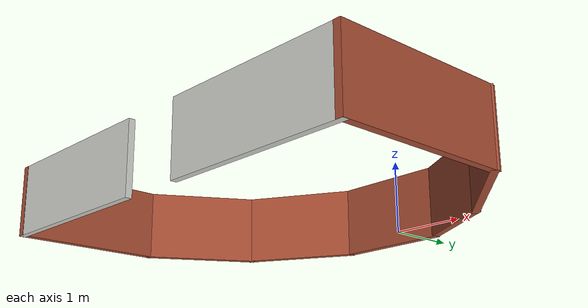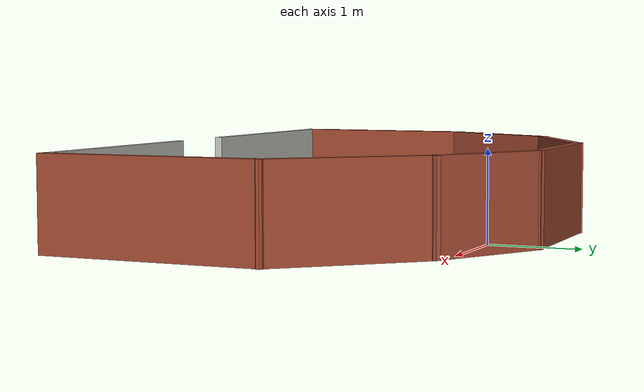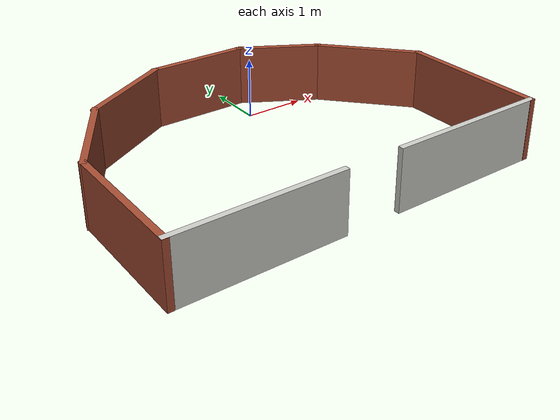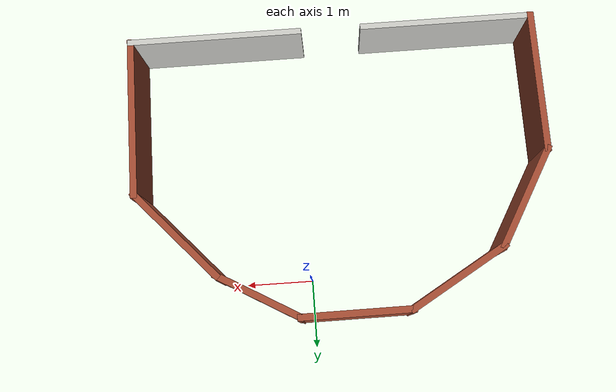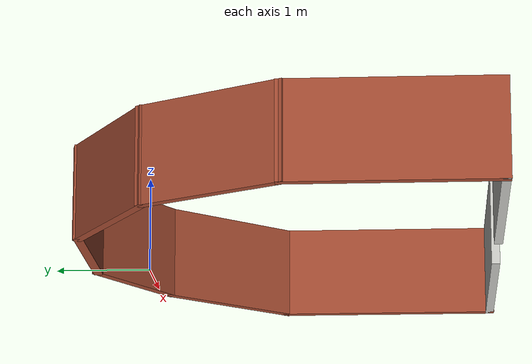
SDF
<?xml version='1.0'?>
<sdf version='1.7'>
  <model name='sketch_try'>
    <pose>-0.558796 -1.55785 0 0 -0 0</pose>
    <link name='Wall_0'>
      <collision name='Wall_0_Collision'>
        <geometry>
          <box>
            <size>2.45 0.1 1</size>
          </box>
        </geometry>
        <pose>0 0 0.5 0 -0 0</pose>
      </collision>
      <visual name='Wall_0_Visual'>
        <pose>0 0 0.5 0 -0 0</pose>
        <geometry>
          <box>
            <size>2.45 0.1 1</size>
          </box>
        </geometry>
        <material>
          <script>
            <uri>file://media/materials/scripts/gazebo.material</uri>
            <name>Gazebo/Bricks</name>
          </script>
          <ambient>1 1 1 1</ambient>
        </material>
        <meta>
          <layer>0</layer>
        </meta>
      </visual>
      <pose>3.0488 -0.977149 0 0 -0 -1.5708</pose>
    </link>
    <link name='Wall_11'>
      <collision name='Wall_11_Collision'>
        <geometry>
          <box>
            <size>2.2 0.1 1</size>
          </box>
        </geometry>
        <pose>0 0 0.5 0 -0 0</pose>
      </collision>
      <visual name='Wall_11_Visual'>
        <pose>0 0 0.5 0 -0 0</pose>
        <geometry>
          <box>
            <size>2.2 0.1 1</size>
          </box>
        </geometry>
        <material>
          <script>
            <uri>file://media/materials/scripts/gazebo.material</uri>
            <name>Gazebo/Bricks</name>
          </script>
          <ambient>1 1 1 1</ambient>
        </material>
        <meta>
          <layer>0</layer>
        </meta>
      </visual>
      <pose>-3.0512 -1.10215 0 0 -0 -1.5708</pose>
    </link>
    <link name='Wall_13'>
      <pose>-0.001204 -2.15215 0 0 -0 0</pose>
      <visual name='Wall_13_Visual_0'>
        <pose>-1.7675 0 0.5 0 -0 0</pose>
        <geometry>
          <box>
            <size>2.655 0.09 1</size>
          </box>
        </geometry>
        <material>
          <script>
            <uri>file://media/materials/scripts/gazebo.material</uri>
            <name>Gazebo/CeilingTiled</name>
          </script>
          <ambient>0.760784 0.662745 0.627451 1</ambient>
        </material>
        <meta>
          <layer>0</layer>
        </meta>
      </visual>
      <collision name='Wall_13_Collision_0'>
        <geometry>
          <box>
            <size>2.655 0.09 1</size>
          </box>
        </geometry>
        <pose>-1.7675 0 0.5 0 -0 0</pose>
      </collision>
      <visual name='Wall_13_Visual_1'>
        <pose>1.7775 0 0.5 0 -0 0</pose>
        <geometry>
          <box>
            <size>2.635 0.09 1</size>
          </box>
        </geometry>
        <material>
          <script>
            <uri>file://media/materials/scripts/gazebo.material</uri>
            <name>Gazebo/CeilingTiled</name>
          </script>
          <ambient>0.760784 0.662745 0.627451 1</ambient>
        </material>
        <meta>
          <layer>0</layer>
        </meta>
      </visual>
      <collision name='Wall_13_Collision_1'>
        <geometry>
          <box>
            <size>2.635 0.09 1</size>
          </box>
        </geometry>
        <pose>1.7775 0 0.5 0 -0 0</pose>
      </collision>
    </link>
    <link name='Wall_5'>
      <collision name='Wall_5_Collision'>
        <geometry>
          <box>
            <size>1.7 0.1 1</size>
          </box>
        </geometry>
        <pose>0 0 0.5 0 -0 0</pose>
      </collision>
      <visual name='Wall_5_Visual'>
        <pose>0 0 0.5 0 -0 0</pose>
        <geometry>
          <box>
            <size>1.7 0.1 1</size>
          </box>
        </geometry>
        <material>
          <script>
            <uri>file://media/materials/scripts/gazebo.material</uri>
            <name>Gazebo/Bricks</name>
          </script>
          <ambient>1 1 1 1</ambient>
        </material>
        <meta>
          <layer>0</layer>
        </meta>
      </visual>
      <pose>-2.6512 0.640851 0 0 -0 1.04731</pose>
    </link>
    <link name='Wall_6'>
      <collision name='Wall_6_Collision'>
        <geometry>
          <box>
            <size>1.69982 0.1 1</size>
          </box>
        </geometry>
        <pose>0 0 0.5 0 -0 0</pose>
      </collision>
      <visual name='Wall_6_Visual'>
        <pose>0 0 0.5 0 -0 0</pose>
        <geometry>
          <box>
            <size>1.69982 0.1 1</size>
          </box>
        </geometry>
        <material>
          <script>
            <uri>file://media/materials/scripts/gazebo.material</uri>
            <name>Gazebo/Bricks</name>
          </script>
          <ambient>1 1 1 1</ambient>
        </material>
        <meta>
          <layer>0</layer>
        </meta>
      </visual>
      <pose>-1.5582 1.73385 0 0 -0 0.523487</pose>
    </link>
    <link name='Wall_7'>
      <collision name='Wall_7_Collision'>
        <geometry>
          <box>
            <size>1.69964 0.1 1</size>
          </box>
        </geometry>
        <pose>0 0 0.5 0 -0 0</pose>
      </collision>
      <visual name='Wall_7_Visual'>
        <pose>0 0 0.5 0 -0 0</pose>
        <geometry>
          <box>
            <size>1.69964 0.1 1</size>
          </box>
        </geometry>
        <material>
          <script>
            <uri>file://media/materials/scripts/gazebo.material</uri>
            <name>Gazebo/Bricks</name>
          </script>
          <ambient>1 1 1 1</ambient>
        </material>
        <meta>
          <layer>0</layer>
        </meta>
      </visual>
      <pose>-0.065204 2.13385 0 0 -0 0</pose>
    </link>
    <link name='Wall_8'>
      <collision name='Wall_8_Collision'>
        <geometry>
          <box>
            <size>1.44987 0.1 1</size>
          </box>
        </geometry>
        <pose>0 0 0.5 0 -0 0</pose>
      </collision>
      <visual name='Wall_8_Visual'>
        <pose>0 0 0.5 0 -0 0</pose>
        <geometry>
          <box>
            <size>1.44987 0.1 1</size>
          </box>
        </geometry>
        <material>
          <script>
            <uri>file://media/materials/scripts/gazebo.material</uri>
            <name>Gazebo/Bricks</name>
          </script>
          <ambient>1 1 1 1</ambient>
        </material>
        <meta>
          <layer>0</layer>
        </meta>
      </visual>
      <pose>1.3193 1.79635 0 0 -0 -0.523649</pose>
    </link>
    <link name='Wall_9'>
      <collision name='Wall_9_Collision'>
        <geometry>
          <box>
            <size>1.80327 0.1 1</size>
          </box>
        </geometry>
        <pose>0 0 0.5 0 -0 0</pose>
      </collision>
      <visual name='Wall_9_Visual'>
        <pose>0 0 0.5 0 -0 0</pose>
        <geometry>
          <box>
            <size>1.80327 0.1 1</size>
          </box>
        </geometry>
        <material>
          <script>
            <uri>file://media/materials/scripts/gazebo.material</uri>
            <name>Gazebo/Bricks</name>
          </script>
          <ambient>1 1 1 1</ambient>
        </material>
        <meta>
          <layer>0</layer>
        </meta>
      </visual>
      <pose>2.4763 0.828351 0 0 -0 -0.833574</pose>
    </link>
    <static>1</static>
  </model>
</sdf>
